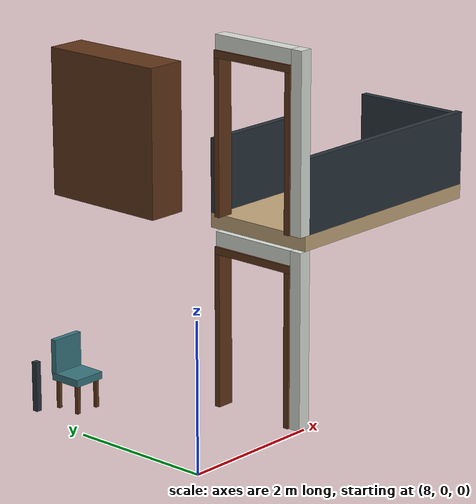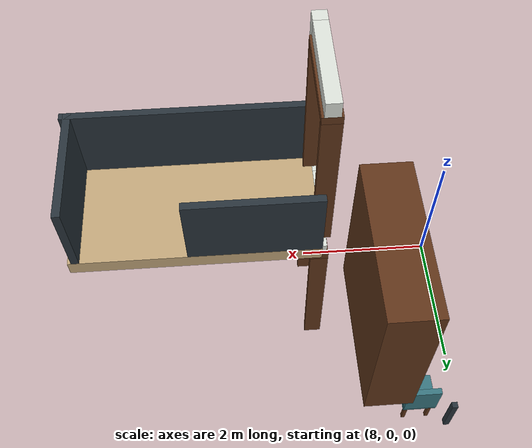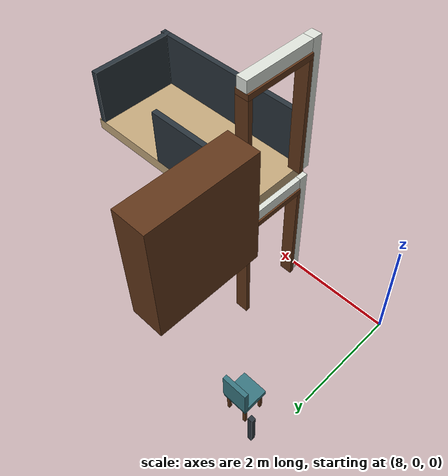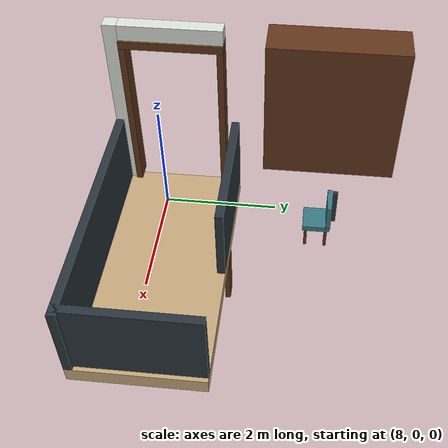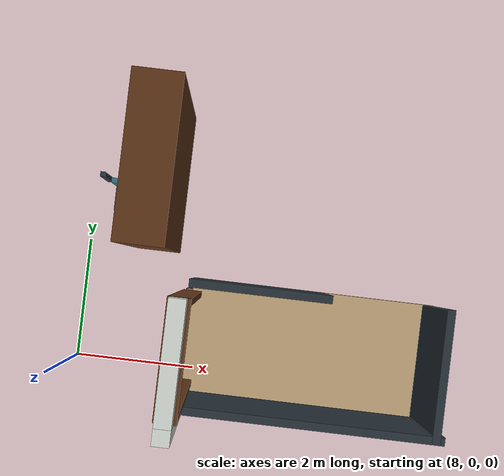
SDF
<sdf version="1.7">
 <model name="home_indoor">
  <static>true</static>
  <link name="f0_ramp_door_south">
   <pose>10 0.085 1.2 0 0 0</pose>
   <collision name="f0_ramp_door_south_collision">
    <geometry><box><size>0.18 0.17 2.4</size></box></geometry>
    <surface><friction><ode><mu>1.0</mu><mu2>1.0</mu2></ode></friction></surface>
   </collision>
   <visual name="f0_ramp_door_south_visual">
    <geometry><box><size>0.18 0.17 2.4</size></box></geometry>
    <material><ambient>0.86 0.88 0.85 1</ambient><diffuse>0.86 0.88 0.85 1</diffuse></material>
   </visual>
  </link>
  <link name="f0_ramp_door_lintel">
   <pose>10 0.8 2.3 0 0 0</pose>
   <collision name="f0_ramp_door_lintel_collision">
    <geometry><box><size>0.18 1.26 0.2</size></box></geometry>
    <surface><friction><ode><mu>1.0</mu><mu2>1.0</mu2></ode></friction></surface>
   </collision>
   <visual name="f0_ramp_door_lintel_visual">
    <geometry><box><size>0.18 1.26 0.2</size></box></geometry>
    <material><ambient>0.86 0.88 0.85 1</ambient><diffuse>0.86 0.88 0.85 1</diffuse></material>
   </visual>
  </link>
  <link name="f0_ramp_door_jamb_-1">
   <pose>10 0.21 1.05 0 0 0</pose>
   <collision name="f0_ramp_door_jamb_-1_collision">
    <geometry><box><size>0.24 0.08 2.1</size></box></geometry>
    <surface><friction><ode><mu>1.0</mu><mu2>1.0</mu2></ode></friction></surface>
   </collision>
   <visual name="f0_ramp_door_jamb_-1_visual">
    <geometry><box><size>0.24 0.08 2.1</size></box></geometry>
    <material><ambient>0.38 0.21 0.10 1</ambient><diffuse>0.38 0.21 0.10 1</diffuse></material>
   </visual>
  </link>
  <link name="f0_ramp_door_jamb_1">
   <pose>10 1.39 1.05 0 0 0</pose>
   <collision name="f0_ramp_door_jamb_1_collision">
    <geometry><box><size>0.24 0.08 2.1</size></box></geometry>
    <surface><friction><ode><mu>1.0</mu><mu2>1.0</mu2></ode></friction></surface>
   </collision>
   <visual name="f0_ramp_door_jamb_1_visual">
    <geometry><box><size>0.24 0.08 2.1</size></box></geometry>
    <material><ambient>0.38 0.21 0.10 1</ambient><diffuse>0.38 0.21 0.10 1</diffuse></material>
   </visual>
  </link>
  <link name="f0_ramp_door_frame_top">
   <pose>10 0.8 2.15 0 0 0</pose>
   <collision name="f0_ramp_door_frame_top_collision">
    <geometry><box><size>0.24 1.26 0.1</size></box></geometry>
    <surface><friction><ode><mu>1.0</mu><mu2>1.0</mu2></ode></friction></surface>
   </collision>
   <visual name="f0_ramp_door_frame_top_visual">
    <geometry><box><size>0.24 1.26 0.1</size></box></geometry>
    <material><ambient>0.38 0.21 0.10 1</ambient><diffuse>0.38 0.21 0.10 1</diffuse></material>
   </visual>
  </link>
  <link name="f1_ramp_door_south">
   <pose>10 0.085 3.8 0 0 0</pose>
   <collision name="f1_ramp_door_south_collision">
    <geometry><box><size>0.18 0.17 2.4</size></box></geometry>
    <surface><friction><ode><mu>1.0</mu><mu2>1.0</mu2></ode></friction></surface>
   </collision>
   <visual name="f1_ramp_door_south_visual">
    <geometry><box><size>0.18 0.17 2.4</size></box></geometry>
    <material><ambient>0.86 0.88 0.85 1</ambient><diffuse>0.86 0.88 0.85 1</diffuse></material>
   </visual>
  </link>
  <link name="f1_ramp_door_lintel">
   <pose>10 0.8 4.9 0 0 0</pose>
   <collision name="f1_ramp_door_lintel_collision">
    <geometry><box><size>0.18 1.26 0.2</size></box></geometry>
    <surface><friction><ode><mu>1.0</mu><mu2>1.0</mu2></ode></friction></surface>
   </collision>
   <visual name="f1_ramp_door_lintel_visual">
    <geometry><box><size>0.18 1.26 0.2</size></box></geometry>
    <material><ambient>0.86 0.88 0.85 1</ambient><diffuse>0.86 0.88 0.85 1</diffuse></material>
   </visual>
  </link>
  <link name="f1_ramp_door_jamb_-1">
   <pose>10 0.21 3.65 0 0 0</pose>
   <collision name="f1_ramp_door_jamb_-1_collision">
    <geometry><box><size>0.24 0.08 2.1</size></box></geometry>
    <surface><friction><ode><mu>1.0</mu><mu2>1.0</mu2></ode></friction></surface>
   </collision>
   <visual name="f1_ramp_door_jamb_-1_visual">
    <geometry><box><size>0.24 0.08 2.1</size></box></geometry>
    <material><ambient>0.38 0.21 0.10 1</ambient><diffuse>0.38 0.21 0.10 1</diffuse></material>
   </visual>
  </link>
  <link name="f1_ramp_door_jamb_1">
   <pose>10 1.39 3.65 0 0 0</pose>
   <collision name="f1_ramp_door_jamb_1_collision">
    <geometry><box><size>0.24 0.08 2.1</size></box></geometry>
    <surface><friction><ode><mu>1.0</mu><mu2>1.0</mu2></ode></friction></surface>
   </collision>
   <visual name="f1_ramp_door_jamb_1_visual">
    <geometry><box><size>0.24 0.08 2.1</size></box></geometry>
    <material><ambient>0.38 0.21 0.10 1</ambient><diffuse>0.38 0.21 0.10 1</diffuse></material>
   </visual>
  </link>
  <link name="f1_ramp_door_frame_top">
   <pose>10 0.8 4.75 0 0 0</pose>
   <collision name="f1_ramp_door_frame_top_collision">
    <geometry><box><size>0.24 1.26 0.1</size></box></geometry>
    <surface><friction><ode><mu>1.0</mu><mu2>1.0</mu2></ode></friction></surface>
   </collision>
   <visual name="f1_ramp_door_frame_top_visual">
    <geometry><box><size>0.24 1.26 0.1</size></box></geometry>
    <material><ambient>0.38 0.21 0.10 1</ambient><diffuse>0.38 0.21 0.10 1</diffuse></material>
   </visual>
  </link>
  <link name="dining_leg_1_1">
   <pose>8.21 3.06 0.34 0 0 0</pose>
   <collision name="dining_leg_1_1_collision">
    <geometry><box><size>0.08 0.08 0.68</size></box></geometry>
    <surface><friction><ode><mu>1.0</mu><mu2>1.0</mu2></ode></friction></surface>
   </collision>
   <visual name="dining_leg_1_1_visual">
    <geometry><box><size>0.08 0.08 0.68</size></box></geometry>
    <material><ambient>0.16 0.20 0.23 1</ambient><diffuse>0.16 0.20 0.23 1</diffuse></material>
   </visual>
  </link>
  <link name="dining_chair_1_seat">
   <pose>8.65 2.75 0.44 0 0 0</pose>
   <collision name="dining_chair_1_seat_collision">
    <geometry><box><size>0.46 0.46 0.1</size></box></geometry>
    <surface><friction><ode><mu>1.0</mu><mu2>1.0</mu2></ode></friction></surface>
   </collision>
   <visual name="dining_chair_1_seat_visual">
    <geometry><box><size>0.46 0.46 0.1</size></box></geometry>
    <material><ambient>0.22 0.46 0.50 1</ambient><diffuse>0.22 0.46 0.50 1</diffuse></material>
   </visual>
  </link>
  <link name="dining_chair_1_back">
   <pose>8.65 2.95 0.7 0 0 0</pose>
   <collision name="dining_chair_1_back_collision">
    <geometry><box><size>0.46 0.08 0.5</size></box></geometry>
    <surface><friction><ode><mu>1.0</mu><mu2>1.0</mu2></ode></friction></surface>
   </collision>
   <visual name="dining_chair_1_back_visual">
    <geometry><box><size>0.46 0.08 0.5</size></box></geometry>
    <material><ambient>0.22 0.46 0.50 1</ambient><diffuse>0.22 0.46 0.50 1</diffuse></material>
   </visual>
  </link>
  <link name="dining_chair_1_leg_-1_-1">
   <pose>8.48 2.58 0.2 0 0 0</pose>
   <collision name="dining_chair_1_leg_-1_-1_collision">
    <geometry><box><size>0.05 0.05 0.4</size></box></geometry>
    <surface><friction><ode><mu>1.0</mu><mu2>1.0</mu2></ode></friction></surface>
   </collision>
   <visual name="dining_chair_1_leg_-1_-1_visual">
    <geometry><box><size>0.05 0.05 0.4</size></box></geometry>
    <material><ambient>0.38 0.21 0.10 1</ambient><diffuse>0.38 0.21 0.10 1</diffuse></material>
   </visual>
  </link>
  <link name="dining_chair_1_leg_-1_1">
   <pose>8.48 2.92 0.2 0 0 0</pose>
   <collision name="dining_chair_1_leg_-1_1_collision">
    <geometry><box><size>0.05 0.05 0.4</size></box></geometry>
    <surface><friction><ode><mu>1.0</mu><mu2>1.0</mu2></ode></friction></surface>
   </collision>
   <visual name="dining_chair_1_leg_-1_1_visual">
    <geometry><box><size>0.05 0.05 0.4</size></box></geometry>
    <material><ambient>0.38 0.21 0.10 1</ambient><diffuse>0.38 0.21 0.10 1</diffuse></material>
   </visual>
  </link>
  <link name="dining_chair_1_leg_1_-1">
   <pose>8.82 2.58 0.2 0 0 0</pose>
   <collision name="dining_chair_1_leg_1_-1_collision">
    <geometry><box><size>0.05 0.05 0.4</size></box></geometry>
    <surface><friction><ode><mu>1.0</mu><mu2>1.0</mu2></ode></friction></surface>
   </collision>
   <visual name="dining_chair_1_leg_1_-1_visual">
    <geometry><box><size>0.05 0.05 0.4</size></box></geometry>
    <material><ambient>0.38 0.21 0.10 1</ambient><diffuse>0.38 0.21 0.10 1</diffuse></material>
   </visual>
  </link>
  <link name="dining_chair_1_leg_1_1">
   <pose>8.82 2.92 0.2 0 0 0</pose>
   <collision name="dining_chair_1_leg_1_1_collision">
    <geometry><box><size>0.05 0.05 0.4</size></box></geometry>
    <surface><friction><ode><mu>1.0</mu><mu2>1.0</mu2></ode></friction></surface>
   </collision>
   <visual name="dining_chair_1_leg_1_1_visual">
    <geometry><box><size>0.05 0.05 0.4</size></box></geometry>
    <material><ambient>0.38 0.21 0.10 1</ambient><diffuse>0.38 0.21 0.10 1</diffuse></material>
   </visual>
  </link>
  <link name="bookcase">
   <pose>9.5 2.8 3.6 0 0 0</pose>
   <collision name="bookcase_collision">
    <geometry><box><size>0.55 1.8 2</size></box></geometry>
    <surface><friction><ode><mu>1.0</mu><mu2>1.0</mu2></ode></friction></surface>
   </collision>
   <visual name="bookcase_visual">
    <geometry><box><size>0.55 1.8 2</size></box></geometry>
    <material><ambient>0.38 0.21 0.10 1</ambient><diffuse>0.38 0.21 0.10 1</diffuse></material>
   </visual>
  </link>
  <link name="landing_upper">
   <pose>11.6 0.8 2.5 0 0 0</pose>
   <collision name="landing_upper_collision">
    <geometry><box><size>3.2 1.6 0.2</size></box></geometry>
    <surface><friction><ode><mu>1.0</mu><mu2>1.0</mu2></ode></friction></surface>
   </collision>
   <visual name="landing_upper_visual">
    <geometry><box><size>3.2 1.6 0.2</size></box></geometry>
    <material><ambient>0.76 0.65 0.48 1</ambient><diffuse>0.76 0.65 0.48 1</diffuse></material>
   </visual>
  </link>
  <link name="upper_east_guard">
   <pose>13.1 0.8 3.1 0 0 0</pose>
   <collision name="upper_east_guard_collision">
    <geometry><box><size>0.1 1.6 1</size></box></geometry>
    <surface><friction><ode><mu>1.0</mu><mu2>1.0</mu2></ode></friction></surface>
   </collision>
   <visual name="upper_east_guard_visual">
    <geometry><box><size>0.1 1.6 1</size></box></geometry>
    <material><ambient>0.16 0.20 0.23 1</ambient><diffuse>0.16 0.20 0.23 1</diffuse></material>
   </visual>
  </link>
  <link name="upper_south_guard">
   <pose>11.6 0.05 3.1 0 0 0</pose>
   <collision name="upper_south_guard_collision">
    <geometry><box><size>3.2 0.1 1</size></box></geometry>
    <surface><friction><ode><mu>1.0</mu><mu2>1.0</mu2></ode></friction></surface>
   </collision>
   <visual name="upper_south_guard_visual">
    <geometry><box><size>3.2 0.1 1</size></box></geometry>
    <material><ambient>0.16 0.20 0.23 1</ambient><diffuse>0.16 0.20 0.23 1</diffuse></material>
   </visual>
  </link>
  <link name="upper_void_guard">
   <pose>10.85 1.55 3.1 0 0 0</pose>
   <collision name="upper_void_guard_collision">
    <geometry><box><size>1.7 0.1 1</size></box></geometry>
    <surface><friction><ode><mu>1.0</mu><mu2>1.0</mu2></ode></friction></surface>
   </collision>
   <visual name="upper_void_guard_visual">
    <geometry><box><size>1.7 0.1 1</size></box></geometry>
    <material><ambient>0.16 0.20 0.23 1</ambient><diffuse>0.16 0.20 0.23 1</diffuse></material>
   </visual>
  </link>
 </model>
</sdf>
